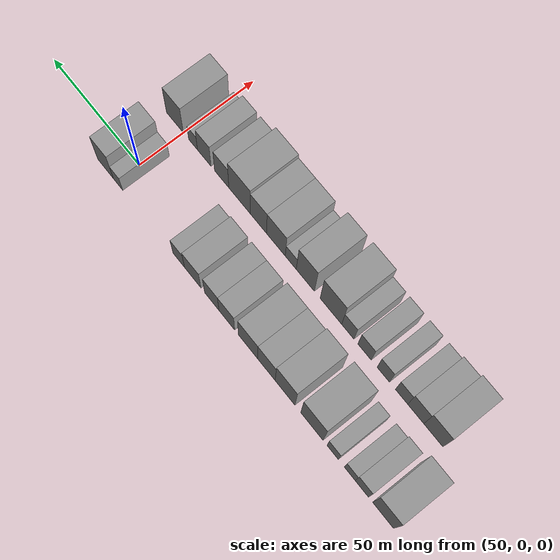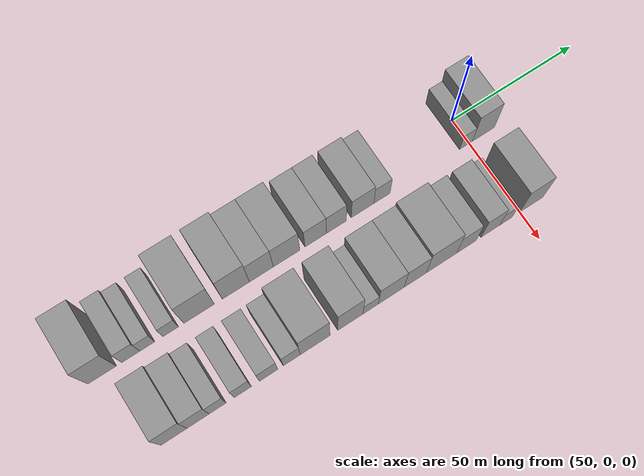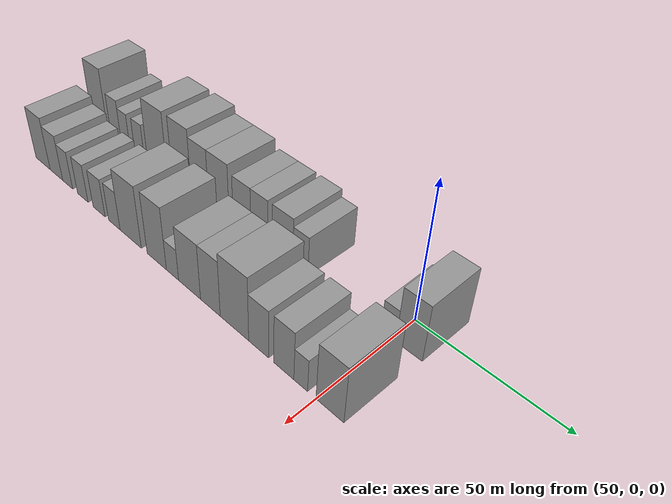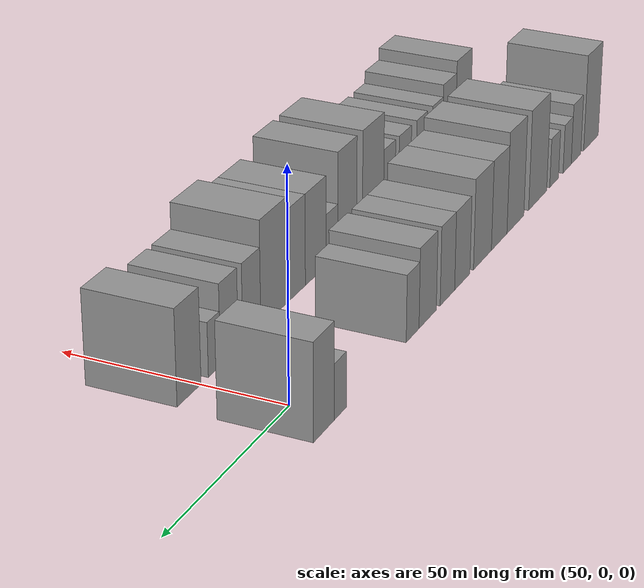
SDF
<sdf version="1.6">
 <world name="default">
  <model name="building_15">
   <static>1</static>
   <pose>50.0000 -142.3722 0 0.000000 0.000000 0.000000</pose>
   <link name="link">
    <pose>0 0 12.00 0 0 0</pose>
    <collision name="collision"><geometry><box><size>20.0000 10.3744 24.0000</size></box></geometry></collision>
    <visual name="visual">
     <cast_shadows>0</cast_shadows>
     <geometry><box><size>20.0000 10.3744 24.0000</size></box></geometry>
     <material>
      <script>
       <uri>model://grey_wall/materials/scripts</uri>
       <uri>model://grey_wall/materials/textures</uri>
       <name>vrc/grey_wall</name>
      </script>
     </material>
    </visual>
   </link>
  </model>
  <model name="building_16">
   <static>1</static>
   <pose>50.0000 -131.8775 0 0.000000 0.000000 0.000000</pose>
   <link name="link">
    <pose>0 0 7.50 0 0 0</pose>
    <collision name="collision"><geometry><box><size>20.0000 6.6150 15.0000</size></box></geometry></collision>
    <visual name="visual">
     <cast_shadows>0</cast_shadows>
     <geometry><box><size>20.0000 6.6150 15.0000</size></box></geometry>
     <material>
      <script>
       <uri>model://grey_wall/materials/scripts</uri>
       <uri>model://grey_wall/materials/textures</uri>
       <name>vrc/grey_wall</name>
      </script>
     </material>
    </visual>
   </link>
  </model>
  <model name="building_17">
   <static>1</static>
   <pose>50.0000 -125.8137 0 0.000000 0.000000 0.000000</pose>
   <link name="link">
    <pose>0 0 6.00 0 0 0</pose>
    <collision name="collision"><geometry><box><size>20.0000 5.5126 12.0000</size></box></geometry></collision>
    <visual name="visual">
     <cast_shadows>0</cast_shadows>
     <geometry><box><size>20.0000 5.5126 12.0000</size></box></geometry>
     <material>
      <script>
       <uri>model://grey_wall/materials/scripts</uri>
       <uri>model://grey_wall/materials/textures</uri>
       <name>vrc/grey_wall</name>
      </script>
     </material>
    </visual>
   </link>
  </model>
  <model name="building_18">
   <static>1</static>
   <pose>50.0000 -117.1598 0 0.000000 0.000000 0.000000</pose>
   <link name="link">
    <pose>0 0 6.00 0 0 0</pose>
    <collision name="collision"><geometry><box><size>20.0000 5.7952 12.0000</size></box></geometry></collision>
    <visual name="visual">
     <cast_shadows>0</cast_shadows>
     <geometry><box><size>20.0000 5.7952 12.0000</size></box></geometry>
     <material>
      <script>
       <uri>model://grey_wall/materials/scripts</uri>
       <uri>model://grey_wall/materials/textures</uri>
       <name>vrc/grey_wall</name>
      </script>
     </material>
    </visual>
   </link>
  </model>
  <model name="building_19">
   <static>1</static>
   <pose>50.0000 -106.5253 0 0.000000 0.000000 0.000000</pose>
   <link name="link">
    <pose>0 0 12.00 0 0 0</pose>
    <collision name="collision"><geometry><box><size>20.0000 11.4739 24.0000</size></box></geometry></collision>
    <visual name="visual">
     <cast_shadows>0</cast_shadows>
     <geometry><box><size>20.0000 11.4739 24.0000</size></box></geometry>
     <material>
      <script>
       <uri>model://grey_wall/materials/scripts</uri>
       <uri>model://grey_wall/materials/textures</uri>
       <name>vrc/grey_wall</name>
      </script>
     </material>
    </visual>
   </link>
  </model>
  <model name="building_20">
   <static>1</static>
   <pose>50.0000 -92.6263 0 0.000000 0.000000 0.000000</pose>
   <link name="link">
    <pose>0 0 12.00 0 0 0</pose>
    <collision name="collision"><geometry><box><size>20.0000 10.3240 24.0000</size></box></geometry></collision>
    <visual name="visual">
     <cast_shadows>0</cast_shadows>
     <geometry><box><size>20.0000 10.3240 24.0000</size></box></geometry>
     <material>
      <script>
       <uri>model://grey_wall/materials/scripts</uri>
       <uri>model://grey_wall/materials/textures</uri>
       <name>vrc/grey_wall</name>
      </script>
     </material>
    </visual>
   </link>
  </model>
  <model name="building_21">
   <static>1</static>
   <pose>50.0000 -82.8727 0 0.000000 0.000000 0.000000</pose>
   <link name="link">
    <pose>0 0 10.50 0 0 0</pose>
    <collision name="collision"><geometry><box><size>20.0000 9.1832 21.0000</size></box></geometry></collision>
    <visual name="visual">
     <cast_shadows>0</cast_shadows>
     <geometry><box><size>20.0000 9.1832 21.0000</size></box></geometry>
     <material>
      <script>
       <uri>model://grey_wall/materials/scripts</uri>
       <uri>model://grey_wall/materials/textures</uri>
       <name>vrc/grey_wall</name>
      </script>
     </material>
    </visual>
   </link>
  </model>
  <model name="building_22">
   <static>1</static>
   <pose>50.0000 -73.1384 0 0.000000 0.000000 0.000000</pose>
   <link name="link">
    <pose>0 0 10.50 0 0 0</pose>
    <collision name="collision"><geometry><box><size>20.0000 10.2854 21.0000</size></box></geometry></collision>
    <visual name="visual">
     <cast_shadows>0</cast_shadows>
     <geometry><box><size>20.0000 10.2854 21.0000</size></box></geometry>
     <material>
      <script>
       <uri>model://grey_wall/materials/scripts</uri>
       <uri>model://grey_wall/materials/textures</uri>
       <name>vrc/grey_wall</name>
      </script>
     </material>
    </visual>
   </link>
  </model>
  <model name="building_23">
   <static>1</static>
   <pose>50.0000 -61.7829 0 0.000000 0.000000 0.000000</pose>
   <link name="link">
    <pose>0 0 9.00 0 0 0</pose>
    <collision name="collision"><geometry><box><size>20.0000 8.4257 18.0000</size></box></geometry></collision>
    <visual name="visual">
     <cast_shadows>0</cast_shadows>
     <geometry><box><size>20.0000 8.4257 18.0000</size></box></geometry>
     <material>
      <script>
       <uri>model://grey_wall/materials/scripts</uri>
       <uri>model://grey_wall/materials/textures</uri>
       <name>vrc/grey_wall</name>
      </script>
     </material>
    </visual>
   </link>
  </model>
  <model name="building_24">
   <static>1</static>
   <pose>50.0000 -53.6768 0 0.000000 0.000000 0.000000</pose>
   <link name="link">
    <pose>0 0 9.00 0 0 0</pose>
    <collision name="collision"><geometry><box><size>20.0000 7.7865 18.0000</size></box></geometry></collision>
    <visual name="visual">
     <cast_shadows>0</cast_shadows>
     <geometry><box><size>20.0000 7.7865 18.0000</size></box></geometry>
     <material>
      <script>
       <uri>model://grey_wall/materials/scripts</uri>
       <uri>model://grey_wall/materials/textures</uri>
       <name>vrc/grey_wall</name>
      </script>
     </material>
    </visual>
   </link>
  </model>
  <model name="building_25">
   <static>1</static>
   <pose>50.0000 -43.2927 0 0.000000 0.000000 0.000000</pose>
   <link name="link">
    <pose>0 0 9.00 0 0 0</pose>
    <collision name="collision"><geometry><box><size>20.0000 8.9817 18.0000</size></box></geometry></collision>
    <visual name="visual">
     <cast_shadows>0</cast_shadows>
     <geometry><box><size>20.0000 8.9817 18.0000</size></box></geometry>
     <material>
      <script>
       <uri>model://grey_wall/materials/scripts</uri>
       <uri>model://grey_wall/materials/textures</uri>
       <name>vrc/grey_wall</name>
      </script>
     </material>
    </visual>
   </link>
  </model>
  <model name="building_26">
   <static>1</static>
   <pose>50.0000 -35.5720 0 0.000000 0.000000 0.000000</pose>
   <link name="link">
    <pose>0 0 7.50 0 0 0</pose>
    <collision name="collision"><geometry><box><size>20.0000 6.4597 15.0000</size></box></geometry></collision>
    <visual name="visual">
     <cast_shadows>0</cast_shadows>
     <geometry><box><size>20.0000 6.4597 15.0000</size></box></geometry>
     <material>
      <script>
       <uri>model://grey_wall/materials/scripts</uri>
       <uri>model://grey_wall/materials/textures</uri>
       <name>vrc/grey_wall</name>
      </script>
     </material>
    </visual>
   </link>
  </model>
  <model name="building_27">
   <static>1</static>
   <pose>50.0000 -1.3399 0 0.000000 0.000000 0.000000</pose>
   <link name="link">
    <pose>0 0 6.00 0 0 0</pose>
    <collision name="collision"><geometry><box><size>20.0000 5.3348 12.0000</size></box></geometry></collision>
    <visual name="visual">
     <cast_shadows>0</cast_shadows>
     <geometry><box><size>20.0000 5.3348 12.0000</size></box></geometry>
     <material>
      <script>
       <uri>model://grey_wall/materials/scripts</uri>
       <uri>model://grey_wall/materials/textures</uri>
       <name>vrc/grey_wall</name>
      </script>
     </material>
    </visual>
   </link>
  </model>
  <model name="building_28">
   <static>1</static>
   <pose>50.0000 5.8778 0 0.000000 0.000000 0.000000</pose>
   <link name="link">
    <pose>0 0 10.50 0 0 0</pose>
    <collision name="collision"><geometry><box><size>20.0000 9.1007 21.0000</size></box></geometry></collision>
    <visual name="visual">
     <cast_shadows>0</cast_shadows>
     <geometry><box><size>20.0000 9.1007 21.0000</size></box></geometry>
     <material>
      <script>
       <uri>model://grey_wall/materials/scripts</uri>
       <uri>model://grey_wall/materials/textures</uri>
       <name>vrc/grey_wall</name>
      </script>
     </material>
    </visual>
   </link>
  </model>
  <model name="building_75">
   <static>1</static>
   <pose>79.0000 -133.0584 0 0.000000 0.000000 0.000000</pose>
   <link name="link">
    <pose>0 0 10.50 0 0 0</pose>
    <collision name="collision"><geometry><box><size>20.0000 9.4782 21.0000</size></box></geometry></collision>
    <visual name="visual">
     <cast_shadows>0</cast_shadows>
     <geometry><box><size>20.0000 9.4782 21.0000</size></box></geometry>
     <material>
      <script>
       <uri>model://grey_wall/materials/scripts</uri>
       <uri>model://grey_wall/materials/textures</uri>
       <name>vrc/grey_wall</name>
      </script>
     </material>
    </visual>
   </link>
  </model>
  <model name="building_76">
   <static>1</static>
   <pose>79.0000 -124.2952 0 0.000000 0.000000 0.000000</pose>
   <link name="link">
    <pose>0 0 9.00 0 0 0</pose>
    <collision name="collision"><geometry><box><size>20.0000 8.0482 18.0000</size></box></geometry></collision>
    <visual name="visual">
     <cast_shadows>0</cast_shadows>
     <geometry><box><size>20.0000 8.0482 18.0000</size></box></geometry>
     <material>
      <script>
       <uri>model://grey_wall/materials/scripts</uri>
       <uri>model://grey_wall/materials/textures</uri>
       <name>vrc/grey_wall</name>
      </script>
     </material>
    </visual>
   </link>
  </model>
  <model name="building_77">
   <static>1</static>
   <pose>79.0000 -117.1596 0 0.000000 0.000000 0.000000</pose>
   <link name="link">
    <pose>0 0 7.50 0 0 0</pose>
    <collision name="collision"><geometry><box><size>20.0000 6.2230 15.0000</size></box></geometry></collision>
    <visual name="visual">
     <cast_shadows>0</cast_shadows>
     <geometry><box><size>20.0000 6.2230 15.0000</size></box></geometry>
     <material>
      <script>
       <uri>model://grey_wall/materials/scripts</uri>
       <uri>model://grey_wall/materials/textures</uri>
       <name>vrc/grey_wall</name>
      </script>
     </material>
    </visual>
   </link>
  </model>
  <model name="building_78">
   <static>1</static>
   <pose>79.0000 -107.8837 0 0.000000 0.000000 0.000000</pose>
   <link name="link">
    <pose>0 0 7.50 0 0 0</pose>
    <collision name="collision"><geometry><box><size>20.0000 6.3289 15.0000</size></box></geometry></collision>
    <visual name="visual">
     <cast_shadows>0</cast_shadows>
     <geometry><box><size>20.0000 6.3289 15.0000</size></box></geometry>
     <material>
      <script>
       <uri>model://grey_wall/materials/scripts</uri>
       <uri>model://grey_wall/materials/textures</uri>
       <name>vrc/grey_wall</name>
      </script>
     </material>
    </visual>
   </link>
  </model>
  <model name="building_79">
   <static>1</static>
   <pose>79.0000 -98.2653 0 0.000000 0.000000 0.000000</pose>
   <link name="link">
    <pose>0 0 7.50 0 0 0</pose>
    <collision name="collision"><geometry><box><size>20.0000 6.9080 15.0000</size></box></geometry></collision>
    <visual name="visual">
     <cast_shadows>0</cast_shadows>
     <geometry><box><size>20.0000 6.9080 15.0000</size></box></geometry>
     <material>
      <script>
       <uri>model://grey_wall/materials/scripts</uri>
       <uri>model://grey_wall/materials/textures</uri>
       <name>vrc/grey_wall</name>
      </script>
     </material>
    </visual>
   </link>
  </model>
  <model name="building_80">
   <static>1</static>
   <pose>79.0000 -89.6210 0 0.000000 0.000000 0.000000</pose>
   <link name="link">
    <pose>0 0 7.50 0 0 0</pose>
    <collision name="collision"><geometry><box><size>20.0000 6.3806 15.0000</size></box></geometry></collision>
    <visual name="visual">
     <cast_shadows>0</cast_shadows>
     <geometry><box><size>20.0000 6.3806 15.0000</size></box></geometry>
     <material>
      <script>
       <uri>model://grey_wall/materials/scripts</uri>
       <uri>model://grey_wall/materials/textures</uri>
       <name>vrc/grey_wall</name>
      </script>
     </material>
    </visual>
   </link>
  </model>
  <model name="building_81">
   <static>1</static>
   <pose>79.0000 -80.7626 0 0.000000 0.000000 0.000000</pose>
   <link name="link">
    <pose>0 0 12.00 0 0 0</pose>
    <collision name="collision"><geometry><box><size>20.0000 11.3363 24.0000</size></box></geometry></collision>
    <visual name="visual">
     <cast_shadows>0</cast_shadows>
     <geometry><box><size>20.0000 11.3363 24.0000</size></box></geometry>
     <material>
      <script>
       <uri>model://grey_wall/materials/scripts</uri>
       <uri>model://grey_wall/materials/textures</uri>
       <name>vrc/grey_wall</name>
      </script>
     </material>
    </visual>
   </link>
  </model>
  <model name="building_82">
   <static>1</static>
   <pose>79.0000 -67.2696 0 0.000000 0.000000 0.000000</pose>
   <link name="link">
    <pose>0 0 12.00 0 0 0</pose>
    <collision name="collision"><geometry><box><size>20.0000 9.6497 24.0000</size></box></geometry></collision>
    <visual name="visual">
     <cast_shadows>0</cast_shadows>
     <geometry><box><size>20.0000 9.6497 24.0000</size></box></geometry>
     <material>
      <script>
       <uri>model://grey_wall/materials/scripts</uri>
       <uri>model://grey_wall/materials/textures</uri>
       <name>vrc/grey_wall</name>
      </script>
     </material>
    </visual>
   </link>
  </model>
  <model name="building_83">
   <static>1</static>
   <pose>79.0000 -59.4937 0 0.000000 0.000000 0.000000</pose>
   <link name="link">
    <pose>0 0 6.00 0 0 0</pose>
    <collision name="collision"><geometry><box><size>20.0000 5.9021 12.0000</size></box></geometry></collision>
    <visual name="visual">
     <cast_shadows>0</cast_shadows>
     <geometry><box><size>20.0000 5.9021 12.0000</size></box></geometry>
     <material>
      <script>
       <uri>model://grey_wall/materials/scripts</uri>
       <uri>model://grey_wall/materials/textures</uri>
       <name>vrc/grey_wall</name>
      </script>
     </material>
    </visual>
   </link>
  </model>
  <model name="building_84">
   <static>1</static>
   <pose>79.0000 -51.4613 0 0.000000 0.000000 0.000000</pose>
   <link name="link">
    <pose>0 0 10.50 0 0 0</pose>
    <collision name="collision"><geometry><box><size>20.0000 10.1627 21.0000</size></box></geometry></collision>
    <visual name="visual">
     <cast_shadows>0</cast_shadows>
     <geometry><box><size>20.0000 10.1627 21.0000</size></box></geometry>
     <material>
      <script>
       <uri>model://grey_wall/materials/scripts</uri>
       <uri>model://grey_wall/materials/textures</uri>
       <name>vrc/grey_wall</name>
      </script>
     </material>
    </visual>
   </link>
  </model>
  <model name="building_85">
   <static>1</static>
   <pose>79.0000 -42.0060 0 0.000000 0.000000 0.000000</pose>
   <link name="link">
    <pose>0 0 10.50 0 0 0</pose>
    <collision name="collision"><geometry><box><size>20.0000 8.7480 21.0000</size></box></geometry></collision>
    <visual name="visual">
     <cast_shadows>0</cast_shadows>
     <geometry><box><size>20.0000 8.7480 21.0000</size></box></geometry>
     <material>
      <script>
       <uri>model://grey_wall/materials/scripts</uri>
       <uri>model://grey_wall/materials/textures</uri>
       <name>vrc/grey_wall</name>
      </script>
     </material>
    </visual>
   </link>
  </model>
  <model name="building_86">
   <static>1</static>
   <pose>79.0000 -31.6701 0 0.000000 0.000000 0.000000</pose>
   <link name="link">
    <pose>0 0 12.00 0 0 0</pose>
    <collision name="collision"><geometry><box><size>20.0000 11.9237 24.0000</size></box></geometry></collision>
    <visual name="visual">
     <cast_shadows>0</cast_shadows>
     <geometry><box><size>20.0000 11.9237 24.0000</size></box></geometry>
     <material>
      <script>
       <uri>model://grey_wall/materials/scripts</uri>
       <uri>model://grey_wall/materials/textures</uri>
       <name>vrc/grey_wall</name>
      </script>
     </material>
    </visual>
   </link>
  </model>
  <model name="building_87">
   <static>1</static>
   <pose>79.0000 -21.7378 0 0.000000 0.000000 0.000000</pose>
   <link name="link">
    <pose>0 0 9.00 0 0 0</pose>
    <collision name="collision"><geometry><box><size>20.0000 7.9410 18.0000</size></box></geometry></collision>
    <visual name="visual">
     <cast_shadows>0</cast_shadows>
     <geometry><box><size>20.0000 7.9410 18.0000</size></box></geometry>
     <material>
      <script>
       <uri>model://grey_wall/materials/scripts</uri>
       <uri>model://grey_wall/materials/textures</uri>
       <name>vrc/grey_wall</name>
      </script>
     </material>
    </visual>
   </link>
  </model>
  <model name="building_88">
   <static>1</static>
   <pose>79.0000 -11.9650 0 0.000000 0.000000 0.000000</pose>
   <link name="link">
    <pose>0 0 9.00 0 0 0</pose>
    <collision name="collision"><geometry><box><size>20.0000 7.6044 18.0000</size></box></geometry></collision>
    <visual name="visual">
     <cast_shadows>0</cast_shadows>
     <geometry><box><size>20.0000 7.6044 18.0000</size></box></geometry>
     <material>
      <script>
       <uri>model://grey_wall/materials/scripts</uri>
       <uri>model://grey_wall/materials/textures</uri>
       <name>vrc/grey_wall</name>
      </script>
     </material>
    </visual>
   </link>
  </model>
  <model name="building_89">
   <static>1</static>
   <pose>79.0000 -5.6486 0 0.000000 0.000000 0.000000</pose>
   <link name="link">
    <pose>0 0 6.00 0 0 0</pose>
    <collision name="collision"><geometry><box><size>20.0000 5.0285 12.0000</size></box></geometry></collision>
    <visual name="visual">
     <cast_shadows>0</cast_shadows>
     <geometry><box><size>20.0000 5.0285 12.0000</size></box></geometry>
     <material>
      <script>
       <uri>model://grey_wall/materials/scripts</uri>
       <uri>model://grey_wall/materials/textures</uri>
       <name>vrc/grey_wall</name>
      </script>
     </material>
    </visual>
   </link>
  </model>
  <model name="building_90">
   <static>1</static>
   <pose>79.0000 4.6921 0 0.000000 0.000000 0.000000</pose>
   <link name="link">
    <pose>0 0 10.50 0 0 0</pose>
    <collision name="collision"><geometry><box><size>20.0000 9.6528 21.0000</size></box></geometry></collision>
    <visual name="visual">
     <cast_shadows>0</cast_shadows>
     <geometry><box><size>20.0000 9.6528 21.0000</size></box></geometry>
     <material>
      <script>
       <uri>model://grey_wall/materials/scripts</uri>
       <uri>model://grey_wall/materials/textures</uri>
       <name>vrc/grey_wall</name>
      </script>
     </material>
    </visual>
   </link>
  </model>
 </world>
</sdf>
